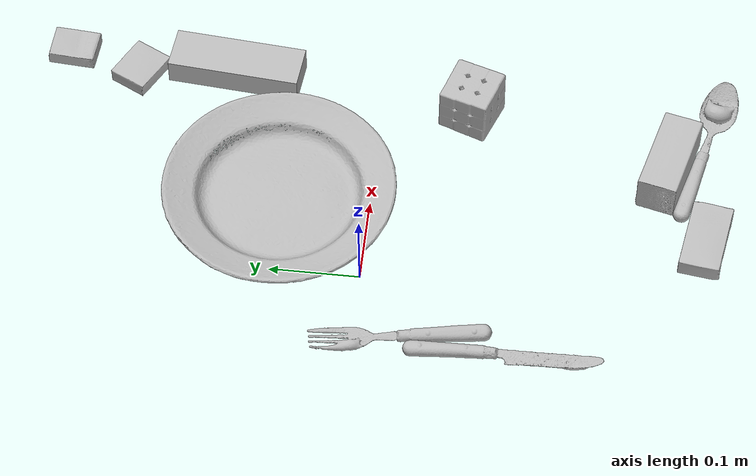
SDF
<sdf version="1.4">
  <world name="default">
    <light name="light1" type="point">
      <pose>0 0 1 0 0 0</pose>
      <diffuse>3 3 3 1</diffuse>
      <specular>3 3 3 1</specular>
    </light>
    <light name="light2" type="point">
      <pose>0 0.5 2 0 0 0</pose>
      <diffuse>1 1 1 1</diffuse>
      <specular>1 1 1 1</specular>
    </light>
    <light name="light3" type="point">
      <pose>0 0.5 2 0 0 0</pose>
      <diffuse>3 3 3 1</diffuse>
      <specular>3 3 3 1</specular>
    </light>
    <scene>
      <ambient>0.7 0.7 0.7</ambient>
    </scene>
    <model name="box11">
      <link name="link_box11">
        <collision name="default">
          <geometry>
            <mesh>
              <uri>model://cracker_box/collision_meshes/collision.obj</uri>
              <scale>0.25 0.25 0.25</scale>
            </mesh>
          </geometry>
          <surface>
            <friction>
              <ode>
                <mu>0.5</mu>
                <mu2>0.5</mu2>
              </ode>
            </friction>
          <contact>
        <ode>
            <max_vel>0</max_vel>
            <min_depth>0.0001</min_depth>
            <kp>1e8</kp>
        </ode>
    </contact></surface>
        </collision>
        <visual name="default">
          <geometry>
            <mesh>
              <uri>model://cracker_box/visual_meshes/visual.dae</uri>
              <scale>0.25 0.25 0.25</scale>
            </mesh>
          </geometry>
        </visual>
        <inertial>
          <mass>0.022244147956371307</mass>
          <pose>0.00023660442093387246 6.358561950037256e-05 -0.00042573834070935845 -0.00031620774024180285 -0.011106489600345375 0.0025467943041161943</pose>
          <inertia>
            <ixx>3.5361988e-06</ixx>
            <iyy>5.838959e-06</iyy>
            <izz>8.33273e-06</izz>
            <ixy>0</ixy>
            <ixz>0</ixz>
            <iyz>0</iyz>
          </inertia>
        </inertial>
      </link>
      <pose>0.277849406003952 0.36244499683380127 0.009120449423789978 -0.011788210469260913 -0.007367134767724747 1.5054535427967912</pose>
    </model>
    <model name="box12">
      <link name="link_box12">
        <collision name="default">
          <geometry>
            <mesh>
              <uri>model://wood_block/collision_meshes/collision.obj</uri>
              <scale>0.5 0.5 0.5</scale>
            </mesh>
          </geometry>
          <surface>
            <friction>
              <ode>
                <mu>0.5</mu>
                <mu2>0.5</mu2>
              </ode>
            </friction>
          <contact>
        <ode>
            <max_vel>0</max_vel>
            <min_depth>0.0001</min_depth>
            <kp>1e8</kp>
        </ode>
    </contact></surface>
        </collision>
        <visual name="default">
          <geometry>
            <mesh>
              <uri>model://wood_block/visual_meshes/visual.dae</uri>
              <scale>0.5 0.5 0.5</scale>
            </mesh>
          </geometry>
        </visual>
        <inertial>
          <mass>0.19826212525367737</mass>
          <pose>-2.9066577553749084e-06 -0.00028540476341731846 0.00013204291462898254 -0.05221087153268513 -0.0051926957009938435 -0.006861378574469354</pose>
          <inertia>
            <ixx>6.632619e-05</ixx>
            <iyy>0.00020952444</iyy>
            <izz>0.0002087407</izz>
            <ixy>0</ixy>
            <ixz>0</ixz>
            <iyz>0</iyz>
          </inertia>
        </inertial>
      </link>
      <pose>0.17500020563602448 -0.32575729489326477 0.022629251703619957 -0.005191986208411745 0.005718686021068379 2.897554594976901</pose>
    </model>
    <model name="box13">
      <link name="link_box13">
        <collision name="default">
          <geometry>
            <mesh>
              <uri>model://pudding_box/collision_meshes/collision.obj</uri>
              <scale>0.5 0.5 0.5</scale>
            </mesh>
          </geometry>
          <surface>
            <friction>
              <ode>
                <mu>0.5</mu>
                <mu2>0.5</mu2>
              </ode>
            </friction>
          <contact>
        <ode>
            <max_vel>0</max_vel>
            <min_depth>0.0001</min_depth>
            <kp>1e8</kp>
        </ode>
    </contact></surface>
        </collision>
        <visual name="default">
          <geometry>
            <mesh>
              <uri>model://pudding_box/visual_meshes/visual.dae</uri>
              <scale>0.5 0.5 0.5</scale>
            </mesh>
          </geometry>
        </visual>
        <inertial>
          <mass>0.049741584807634354</mass>
          <pose>0.00024474109522998333 0.0004033942532259971 -0.0002594413817860186 0.005213101800084814 -0.006603799174386178 0.020079821432586128</pose>
          <inertia>
            <ixx>1.4057575e-05</ixx>
            <iyy>9.458037e-06</iyy>
            <izz>2.0759684e-05</izz>
            <ixy>0</ixy>
            <ixz>0</ixz>
            <iyz>0</iyz>
          </inertia>
        </inertial>
      </link>
      <pose>0.2550504207611084 0.2817458510398865 0.009862903505563736 0.022348571620455063 -0.011391284762717049 1.112219863960519</pose>
    </model>
    <model name="box21">
      <link name="link_box21">
        <collision name="default">
          <geometry>
            <mesh>
              <uri>model://rubiks_cube/collision_meshes/collision.obj</uri>
              <scale>1.0 1.0 1.0</scale>
            </mesh>
          </geometry>
          <surface>
            <friction>
              <ode>
                <mu>0.5</mu>
                <mu2>0.5</mu2>
              </ode>
            </friction>
          <contact>
        <ode>
            <max_vel>0</max_vel>
            <min_depth>0.0001</min_depth>
            <kp>1e8</kp>
        </ode>
    </contact></surface>
        </collision>
        <visual name="default">
          <geometry>
            <mesh>
              <uri>model://rubiks_cube/visual_meshes/visual.dae</uri>
              <scale>1.0 1.0 1.0</scale>
            </mesh>
          </geometry>
        </visual>
        <inertial>
          <mass>0.14589080214500427</mass>
          <pose>2.6721043468569405e-05 5.256966323941015e-05 -7.264316082000732e-06 -0.054672881442690106 -0.09814117646273159 -0.034455034483302956</pose>
          <inertia>
            <ixx>8.061447e-05</ixx>
            <iyy>8.023852e-05</iyy>
            <izz>8.128248e-05</izz>
            <ixy>0</ixy>
            <ixz>0</ixz>
            <iyz>0</iyz>
          </inertia>
        </inertial>
      </link>
      <pose>0.23572903871536255 -0.0999438688158989 0.028678936883807182 -4.698650663052337e-06 -1.8556428898116622e-06 1.2507115231803996</pose>
    </model>
    <model name="box22">
      <link name="link_box22">
        <collision name="default">
          <geometry>
            <mesh>
              <uri>model://jenga/collision_meshes/collision.obj</uri>
              <scale>1.0 1.0 1.0</scale>
            </mesh>
          </geometry>
          <surface>
            <friction>
              <ode>
                <mu>0.5</mu>
                <mu2>0.5</mu2>
              </ode>
            </friction>
          <contact>
        <ode>
            <max_vel>0</max_vel>
            <min_depth>0.0001</min_depth>
            <kp>1e8</kp>
        </ode>
    </contact></surface>
        </collision>
        <visual name="default">
          <geometry>
            <mesh>
              <uri>model://jenga/visual_meshes/visual.dae</uri>
              <scale>1.0 1.0 1.0</scale>
            </mesh>
          </geometry>
        </visual>
        <inertial>
          <mass>0.13963866233825684</mass>
          <pose>-2.502855807051674e-07 -0.00010250010382151231 -4.092339804628864e-05 0.0 -7.342154049184251e-07 0.0</pose>
          <inertia>
            <ixx>3.8641407e-05</ixx>
            <iyy>0.00026183313</iyy>
            <izz>0.00027952914</izz>
            <ixy>0</ixy>
            <ixz>0</ixz>
            <iyz>0</iyz>
          </inertia>
        </inertial>
      </link>
      <pose>0.26755350828170776 0.17197568714618683 0.014999997802078724 3.9756511200682794e-08 4.507119677285008e-09 1.4820493297071562</pose>
    </model>
    <model name="box23">
      <link name="link_box23">
        <collision name="default">
          <geometry>
            <mesh>
              <uri>model://sugar_box/collision_meshes/collision.obj</uri>
              <scale>0.5 0.5 0.5</scale>
            </mesh>
          </geometry>
          <surface>
            <friction>
              <ode>
                <mu>0.5</mu>
                <mu2>0.5</mu2>
              </ode>
            </friction>
          <contact>
        <ode>
            <max_vel>0</max_vel>
            <min_depth>0.0001</min_depth>
            <kp>1e8</kp>
        </ode>
    </contact></surface>
        </collision>
        <visual name="default">
          <geometry>
            <mesh>
              <uri>model://sugar_box/visual_meshes/visual.dae</uri>
              <scale>0.5 0.5 0.5</scale>
            </mesh>
          </geometry>
        </visual>
        <inertial>
          <mass>0.09426560252904892</mass>
          <pose>0.0005171863595023751 1.924554817378521e-05 -0.00018182402709499002 -0.00040462606744182556 0.0010506635219056535 0.0026153790218759383</pose>
          <inertia>
            <ixx>1.963546e-05</ixx>
            <iyy>6.346583e-05</iyy>
            <izz>7.597618e-05</izz>
            <ixy>0</ixy>
            <ixz>0</ixz>
            <iyz>0</iyz>
          </inertia>
        </inertial>
      </link>
      <pose>0.08316782116889954 -0.37136581540107727 0.011411402374505997 -0.00518671594134613 -0.020915832972930773 2.987177007880902</pose>
    </model>
    <model name="plate1">
      <link name="link_plate1">
        <collision name="default">
          <geometry>
            <mesh>
              <uri>model://plate/collision_meshes/collision.obj</uri>
              <scale>1.0 1.0 1.0</scale>
            </mesh>
          </geometry>
          <surface>
            <friction>
              <ode>
                <mu>0.5</mu>
                <mu2>0.5</mu2>
              </ode>
            </friction>
          <contact>
        <ode>
            <max_vel>0</max_vel>
            <min_depth>0.0001</min_depth>
            <kp>1e8</kp>
        </ode>
    </contact></surface>
        </collision>
        <visual name="default">
          <geometry>
            <mesh>
              <uri>model://plate/visual_meshes/visual.dae</uri>
              <scale>1.0 1.0 1.0</scale>
            </mesh>
          </geometry>
        </visual>
        <inertial>
          <mass>0.11197491735219955</mass>
          <pose>-0.0006044617621228099 0.00027825823053717613 -0.001056199544109404 0.00221882520869589 -0.003225452482750881 0.45259630068278056</pose>
          <inertia>
            <ixx>0.0005238209</ixx>
            <iyy>0.00051881076</iyy>
            <izz>0.0010245154</izz>
            <ixy>0</ixy>
            <ixz>0</ixz>
            <iyz>0</iyz>
          </inertia>
        </inertial>
      </link>
      <pose>0.0969664677977562 0.10106602311134338 0.013732998631894588 4.1356386711063116e-08 -5.614417440321344e-09 -1.1830151584444502</pose>
    </model>
    <model name="silverware1">
      <link name="link_silverware1">
        <collision name="default">
          <geometry>
            <mesh>
              <uri>model://knife/collision_meshes/collision.obj</uri>
              <scale>1.0 1.0 1.0</scale>
            </mesh>
          </geometry>
          <surface>
            <friction>
              <ode>
                <mu>0.5</mu>
                <mu2>0.5</mu2>
              </ode>
            </friction>
          <contact>
        <ode>
            <max_vel>0</max_vel>
            <min_depth>0.0001</min_depth>
            <kp>1e8</kp>
        </ode>
    </contact></surface>
        </collision>
        <visual name="default">
          <geometry>
            <mesh>
              <uri>model://knife/visual_meshes/visual.dae</uri>
              <scale>1.0 1.0 1.0</scale>
            </mesh>
          </geometry>
        </visual>
        <inertial>
          <mass>0.01465720683336258</mass>
          <pose>-0.023785248398780823 0.0015275123296305537 5.062019408796914e-05 0.07304601322977639 0.017248415474028462 -0.007409829977624996</pose>
          <inertia>
            <ixx>4.1603096e-07</ixx>
            <iyy>5.6310615e-05</iyy>
            <izz>5.6444613e-05</izz>
            <ixy>0</ixy>
            <ixz>0</ixz>
            <iyz>0</iyz>
          </inertia>
        </inertial>
      </link>
      <pose>-0.08963943272829056 -0.16375793516635895 0.007946514524519444 -0.023779557976975126 -0.014541887503778576 -1.5614598782787454</pose>
    </model>
    <model name="silverware2">
      <link name="link_silverware2">
        <collision name="default">
          <geometry>
            <mesh>
              <uri>model://spoon/collision_meshes/collision.obj</uri>
              <scale>1.0 1.0 1.0</scale>
            </mesh>
          </geometry>
          <surface>
            <friction>
              <ode>
                <mu>0.5</mu>
                <mu2>0.5</mu2>
              </ode>
            </friction>
          <contact>
        <ode>
            <max_vel>0</max_vel>
            <min_depth>0.0001</min_depth>
            <kp>1e8</kp>
        </ode>
    </contact></surface>
        </collision>
        <visual name="default">
          <geometry>
            <mesh>
              <uri>model://spoon/visual_meshes/visual.dae</uri>
              <scale>1.0 1.0 1.0</scale>
            </mesh>
          </geometry>
        </visual>
        <inertial>
          <mass>0.03463635593652725</mass>
          <pose>-0.005526320077478886 -0.0016034176805987954 -0.0007271658396348357 0.035218626746325574 -0.03906584480927328 0.006150611928774215</pose>
          <inertia>
            <ixx>1.9265303e-06</ixx>
            <iyy>0.0001317902</iyy>
            <izz>0.00013274024</izz>
            <ixy>0</ixy>
            <ixz>0</ixz>
            <iyz>0</iyz>
          </inertia>
        </inertial>
      </link>
      <pose>0.20515604317188263 -0.36191314458847046 0.008385419845581055 0.006782998121320367 0.02689021878345677 -0.23436658495573787</pose>
    </model>
    <model name="silverware3">
      <link name="link_silverware3">
        <collision name="default">
          <geometry>
            <mesh>
              <uri>model://fork/collision_meshes/collision.obj</uri>
              <scale>1.0 1.0 1.0</scale>
            </mesh>
          </geometry>
          <surface>
            <friction>
              <ode>
                <mu>0.5</mu>
                <mu2>0.5</mu2>
              </ode>
            </friction>
          <contact>
        <ode>
            <max_vel>0</max_vel>
            <min_depth>0.0001</min_depth>
            <kp>1e8</kp>
        </ode>
    </contact></surface>
        </collision>
        <visual name="default">
          <geometry>
            <mesh>
              <uri>model://fork/visual_meshes/visual.dae</uri>
              <scale>1.0 1.0 1.0</scale>
            </mesh>
          </geometry>
        </visual>
        <inertial>
          <mass>0.019285527989268303</mass>
          <pose>-0.029570043087005615 0.0004658823017962277 0.0003218861238565296 -0.013551447953525298 -0.010977835959949084 0.014453901308334693</pose>
          <inertia>
            <ixx>6.760669e-07</ixx>
            <iyy>5.0348972e-05</iyy>
            <izz>5.065136e-05</izz>
            <ixy>0</ixy>
            <ixz>0</ixz>
            <iyz>0</iyz>
          </inertia>
        </inertial>
      </link>
      <pose>-0.07454901933670044 -0.0520622543990612 0.005688995122909546 -0.17478256053522984 0.02586368576261099 1.716063559765942</pose>
    </model>
  <physics type="ode">
      <max_contacts>50</max_contacts>
      <ode>
        <solver>
          <type>quick</type>
          <iters>75</iters>
        </solver>
        <constraints>
          <contact_max_correcting_vel>0</contact_max_correcting_vel>
          <contact_surface_layer>0</contact_surface_layer>
        </constraints>
      </ode>
    </physics></world>
</sdf>
